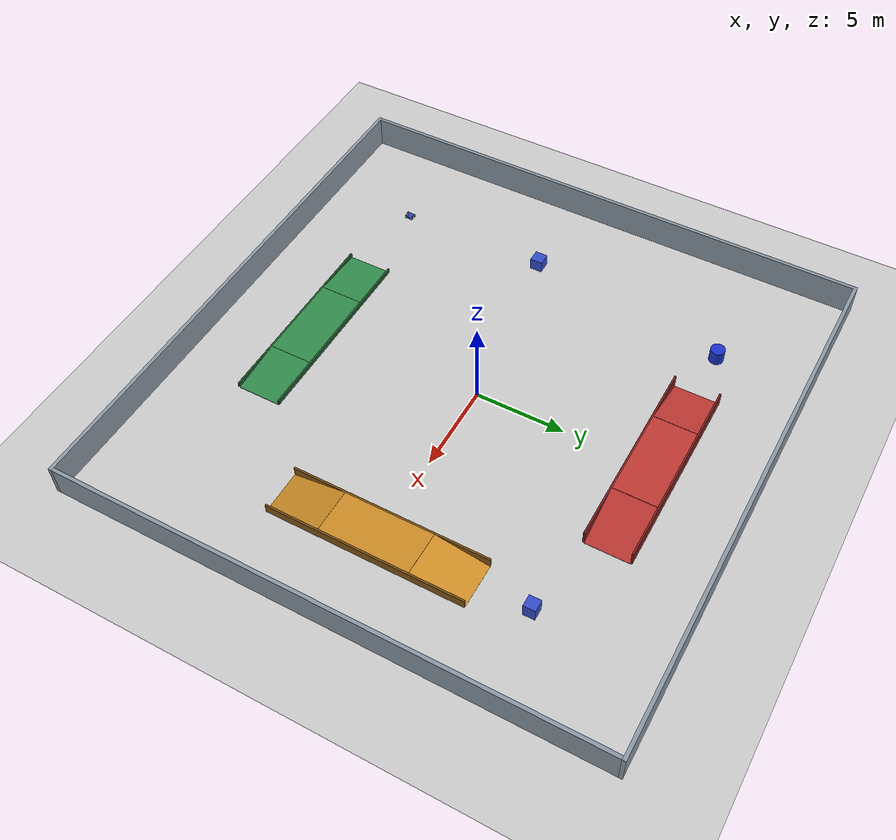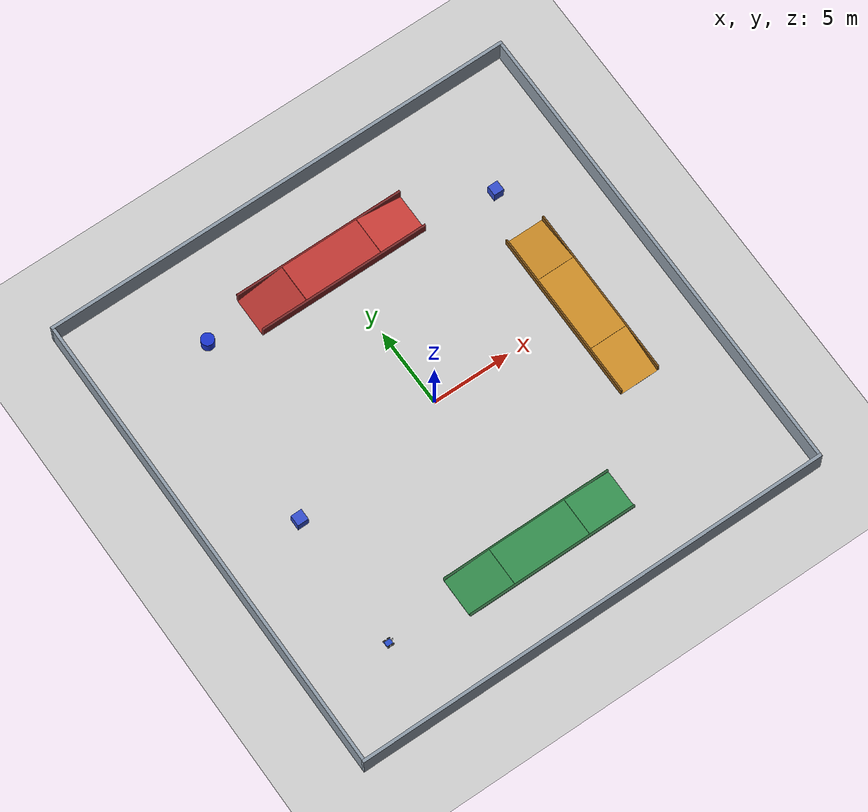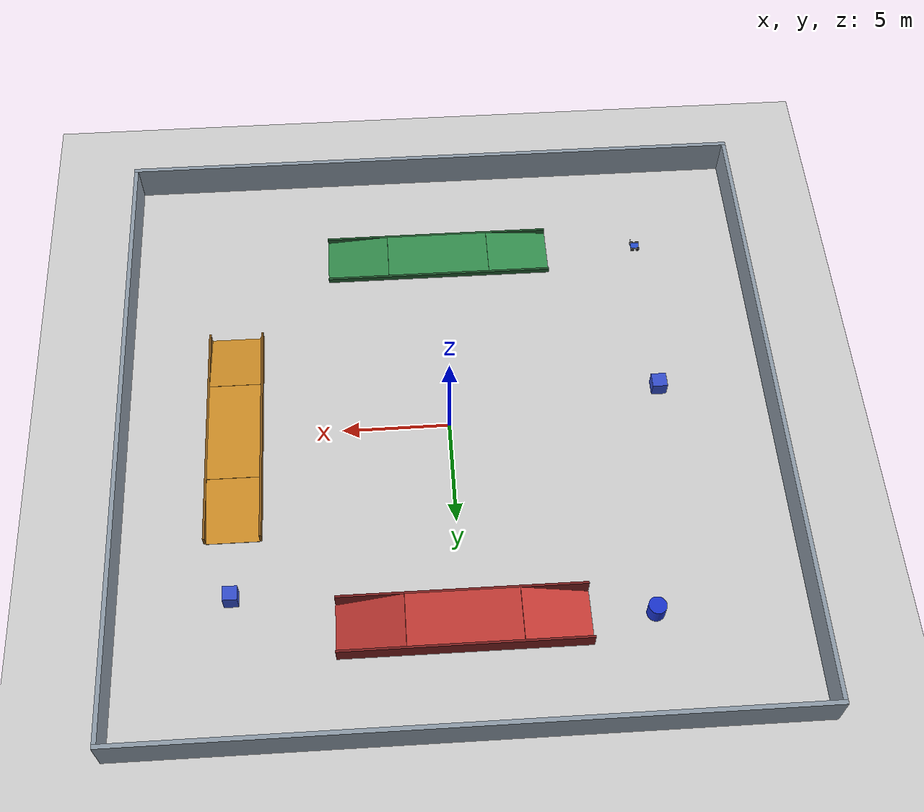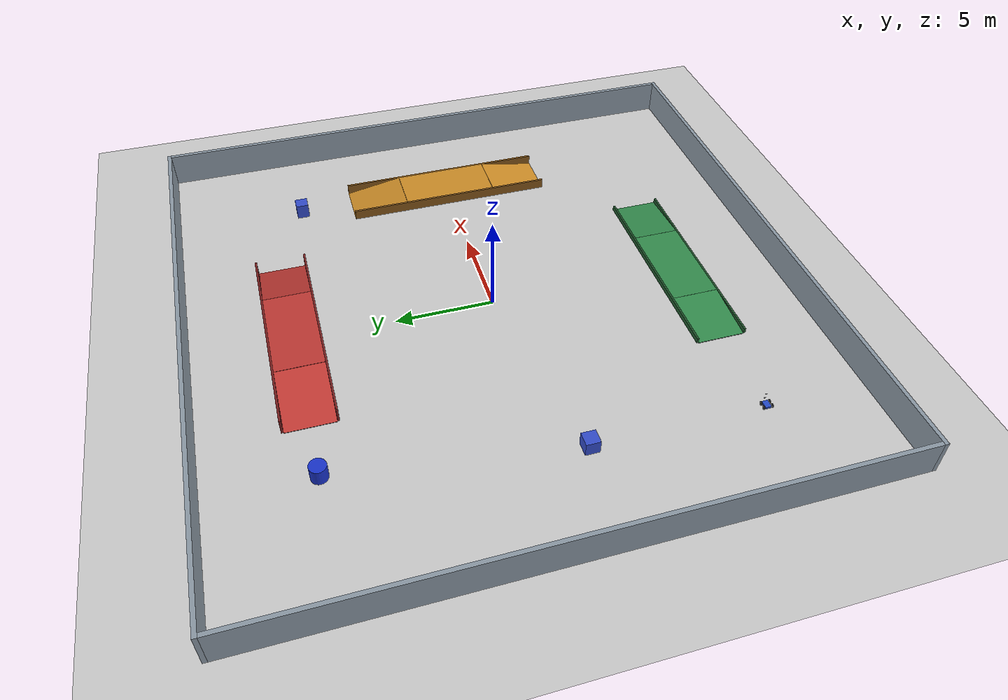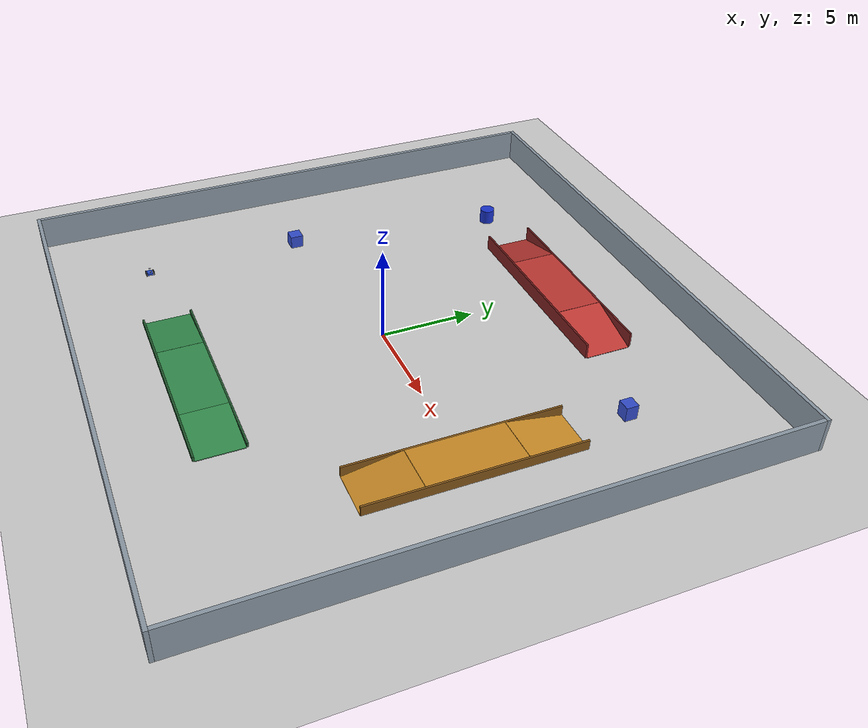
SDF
<sdf version="1.7">
 <world name="square_bridges_30m">
  <gravity>0 0 -9.8</gravity>
  <physics name="default_physics" type="ode">
   <max_step_size>0.001</max_step_size>
   <real_time_factor>1</real_time_factor>
   <real_time_update_rate>1000</real_time_update_rate>
  </physics>
  <scene><ambient>0.45 0.45 0.45 1</ambient><background>0.75 0.8 0.85 1</background><shadows>1</shadows></scene>
  <light name="sun" type="directional">
   <pose>0 0 10 0 -0 0</pose>
   <diffuse>0.8 0.8 0.8 1</diffuse>
   <specular>0.2 0.2 0.2 1</specular>
   <attenuation>
    <range>1000</range>
    <constant>0.9</constant>
    <linear>0.01</linear>
    <quadratic>0.001</quadratic>
   </attenuation>
   <direction>-0.5 0.1 -0.9</direction>
   <spot><inner_angle>0</inner_angle><outer_angle>0</outer_angle><falloff>0</falloff></spot>
  </light>
  <model name="ground_plane">
   <static>1</static>
   <link name="link">
    <collision name="collision">
     <geometry><plane><normal>0 0 1</normal><size>100 100</size></plane></geometry>
     <surface>
      <contact><collide_bitmask>65535</collide_bitmask></contact>
      <friction><ode><mu>100</mu><mu2>50</mu2></ode></friction>
     </surface>
    </collision>
    <visual name="visual">
     <cast_shadows>0</cast_shadows>
     <geometry><plane><normal>0 0 1</normal><size>100 100</size></plane></geometry>
     <material>
      <script><uri>file://media/materials/scripts/gazebo.material</uri><name>Gazebo/Grey</name></script>
     </material>
    </visual>
   </link>
  </model>
  <model name="square_perimeter">
   <static>1</static>
   <link name="south">
    <pose>0 -15.1 0.9 0 -0 0</pose>
    <collision name="collision"><geometry><box><size>30.4 0.2 1.8</size></box></geometry></collision>
    <visual name="visual">
     <geometry><box><size>30.4 0.2 1.8</size></box></geometry>
     <material><ambient>0.55 0.6 0.65 1</ambient><diffuse>0.55 0.6 0.65 1</diffuse></material>
    </visual>
   </link>
   <link name="north">
    <pose>0 15.1 0.9 0 -0 0</pose>
    <collision name="collision"><geometry><box><size>30.4 0.2 1.8</size></box></geometry></collision>
    <visual name="visual">
     <geometry><box><size>30.4 0.2 1.8</size></box></geometry>
     <material><ambient>0.55 0.6 0.65 1</ambient><diffuse>0.55 0.6 0.65 1</diffuse></material>
    </visual>
   </link>
   <link name="east">
    <pose>15.1 0 0.9 0 -0 0</pose>
    <collision name="collision"><geometry><box><size>0.2 30 1.8</size></box></geometry></collision>
    <visual name="visual">
     <geometry><box><size>0.2 30 1.8</size></box></geometry>
     <material><ambient>0.55 0.6 0.65 1</ambient><diffuse>0.55 0.6 0.65 1</diffuse></material>
    </visual>
   </link>
   <link name="west">
    <pose>-15.1 0 0.9 0 -0 0</pose>
    <collision name="collision"><geometry><box><size>0.2 30 1.8</size></box></geometry></collision>
    <visual name="visual">
     <geometry><box><size>0.2 30 1.8</size></box></geometry>
     <material><ambient>0.55 0.6 0.65 1</ambient><diffuse>0.55 0.6 0.65 1</diffuse></material>
    </visual>
   </link>
  </model>
  <model name="south_bridge_05deg">
   <pose>-0 -10 0 0 -0 0</pose>
   <static>1</static>
   <link name="ascent">
    <pose>-4 0 0.071004 0 -0.087266 0</pose>
    <collision name="collision">
     <geometry><box><size>3.01146 2.4 0.12</size></box></geometry>
     <surface><friction><ode><mu>1</mu><mu2>1</mu2></ode></friction></surface>
    </collision>
    <visual name="visual">
     <geometry><box><size>3.01146 2.4 0.12</size></box></geometry>
     <material><ambient>0.2 0.55 0.3 1</ambient><diffuse>0.2 0.55 0.3 1</diffuse></material>
    </visual>
   </link>
   <link name="flat">
    <pose>0 0 0.202466 0 -0 0</pose>
    <collision name="collision">
     <geometry><box><size>5 2.4 0.12</size></box></geometry>
     <surface><friction><ode><mu>1</mu><mu2>1</mu2></ode></friction></surface>
    </collision>
    <visual name="visual">
     <geometry><box><size>5 2.4 0.12</size></box></geometry>
     <material><ambient>0.2 0.55 0.3 1</ambient><diffuse>0.2 0.55 0.3 1</diffuse></material>
    </visual>
   </link>
   <link name="descent">
    <pose>4 0 0.071004 0 0.087266 0</pose>
    <collision name="collision">
     <geometry><box><size>3.01146 2.4 0.12</size></box></geometry>
     <surface><friction><ode><mu>1</mu><mu2>1</mu2></ode></friction></surface>
    </collision>
    <visual name="visual">
     <geometry><box><size>3.01146 2.4 0.12</size></box></geometry>
     <material><ambient>0.2 0.55 0.3 1</ambient><diffuse>0.2 0.55 0.3 1</diffuse></material>
    </visual>
   </link>
   <link name="left_support">
    <pose>0 1 0.071233 0 -0 0</pose>
    <collision name="collision"><geometry><box><size>0.3 0.25 0.142466</size></box></geometry></collision>
    <visual name="visual">
     <geometry><box><size>0.3 0.25 0.142466</size></box></geometry>
     <material><ambient>0.45 0.45 0.45 1</ambient></material>
    </visual>
   </link>
   <link name="right_support">
    <pose>0 -1 0.071233 0 -0 0</pose>
    <collision name="collision"><geometry><box><size>0.3 0.25 0.142466</size></box></geometry></collision>
    <visual name="visual">
     <geometry><box><size>0.3 0.25 0.142466</size></box></geometry>
     <material><ambient>0.45 0.45 0.45 1</ambient></material>
    </visual>
   </link>
   <link name="left_side_wall">
    <pose>0 1.25 0.131233 0 -0 0</pose>
    <collision name="collision"><geometry><box><size>11 0.1 0.262466</size></box></geometry></collision>
    <visual name="visual">
     <geometry><box><size>11 0.1 0.262466</size></box></geometry>
     <material><ambient>0.13 0.35 0.18 1</ambient><diffuse>0.13 0.35 0.18 1</diffuse></material>
    </visual>
   </link>
   <link name="right_side_wall">
    <pose>0 -1.25 0.131233 0 -0 0</pose>
    <collision name="collision"><geometry><box><size>11 0.1 0.262466</size></box></geometry></collision>
    <visual name="visual">
     <geometry><box><size>11 0.1 0.262466</size></box></geometry>
     <material><ambient>0.13 0.35 0.18 1</ambient><diffuse>0.13 0.35 0.18 1</diffuse></material>
    </visual>
   </link>
  </model>
  <model name="east_bridge_10deg">
   <pose>10 0 -0 0 -0 1.5708</pose>
   <static>1</static>
   <link name="ascent">
    <pose>-4 0 0.203565 0 -0.174533 0</pose>
    <collision name="collision">
     <geometry><box><size>3.04628 2.4 0.12</size></box></geometry>
     <surface><friction><ode><mu>1</mu><mu2>1</mu2></ode></friction></surface>
    </collision>
    <visual name="visual">
     <geometry><box><size>3.04628 2.4 0.12</size></box></geometry>
     <material><ambient>0.8 0.55 0.15 1</ambient><diffuse>0.8 0.55 0.15 1</diffuse></material>
    </visual>
   </link>
   <link name="flat">
    <pose>0 0 0.468981 0 -0 0</pose>
    <collision name="collision">
     <geometry><box><size>5 2.4 0.12</size></box></geometry>
     <surface><friction><ode><mu>1</mu><mu2>1</mu2></ode></friction></surface>
    </collision>
    <visual name="visual">
     <geometry><box><size>5 2.4 0.12</size></box></geometry>
     <material><ambient>0.8 0.55 0.15 1</ambient><diffuse>0.8 0.55 0.15 1</diffuse></material>
    </visual>
   </link>
   <link name="descent">
    <pose>4 0 0.203565 0 0.174533 0</pose>
    <collision name="collision">
     <geometry><box><size>3.04628 2.4 0.12</size></box></geometry>
     <surface><friction><ode><mu>1</mu><mu2>1</mu2></ode></friction></surface>
    </collision>
    <visual name="visual">
     <geometry><box><size>3.04628 2.4 0.12</size></box></geometry>
     <material><ambient>0.8 0.55 0.15 1</ambient><diffuse>0.8 0.55 0.15 1</diffuse></material>
    </visual>
   </link>
   <link name="left_support">
    <pose>0 1 0.20449 0 -0 0</pose>
    <collision name="collision"><geometry><box><size>0.3 0.25 0.408981</size></box></geometry></collision>
    <visual name="visual">
     <geometry><box><size>0.3 0.25 0.408981</size></box></geometry>
     <material><ambient>0.45 0.45 0.45 1</ambient></material>
    </visual>
   </link>
   <link name="right_support">
    <pose>0 -1 0.20449 0 -0 0</pose>
    <collision name="collision"><geometry><box><size>0.3 0.25 0.408981</size></box></geometry></collision>
    <visual name="visual">
     <geometry><box><size>0.3 0.25 0.408981</size></box></geometry>
     <material><ambient>0.45 0.45 0.45 1</ambient></material>
    </visual>
   </link>
   <link name="left_side_wall">
    <pose>0 1.25 0.26449 0 -0 0</pose>
    <collision name="collision"><geometry><box><size>11 0.1 0.528981</size></box></geometry></collision>
    <visual name="visual">
     <geometry><box><size>11 0.1 0.528981</size></box></geometry>
     <material><ambient>0.52 0.34 0.1 1</ambient><diffuse>0.52 0.34 0.1 1</diffuse></material>
    </visual>
   </link>
   <link name="right_side_wall">
    <pose>0 -1.25 0.26449 0 -0 0</pose>
    <collision name="collision"><geometry><box><size>11 0.1 0.528981</size></box></geometry></collision>
    <visual name="visual">
     <geometry><box><size>11 0.1 0.528981</size></box></geometry>
     <material><ambient>0.52 0.34 0.1 1</ambient><diffuse>0.52 0.34 0.1 1</diffuse></material>
    </visual>
   </link>
  </model>
  <model name="north_bridge_15deg">
   <pose>-0 10 -0 0 -0 -3.14159</pose>
   <static>1</static>
   <link name="ascent">
    <pose>-4 0 0.339807 0 -0.261799 0</pose>
    <collision name="collision">
     <geometry><box><size>3.10583 2.4 0.12</size></box></geometry>
     <surface><friction><ode><mu>1</mu><mu2>1</mu2></ode></friction></surface>
    </collision>
    <visual name="visual">
     <geometry><box><size>3.10583 2.4 0.12</size></box></geometry>
     <material><ambient>0.75 0.22 0.2 1</ambient><diffuse>0.75 0.22 0.2 1</diffuse></material>
    </visual>
   </link>
   <link name="flat">
    <pose>0 0 0.743848 0 -0 0</pose>
    <collision name="collision">
     <geometry><box><size>5 2.4 0.12</size></box></geometry>
     <surface><friction><ode><mu>1</mu><mu2>1</mu2></ode></friction></surface>
    </collision>
    <visual name="visual">
     <geometry><box><size>5 2.4 0.12</size></box></geometry>
     <material><ambient>0.75 0.22 0.2 1</ambient><diffuse>0.75 0.22 0.2 1</diffuse></material>
    </visual>
   </link>
   <link name="descent">
    <pose>4 0 0.339807 0 0.261799 0</pose>
    <collision name="collision">
     <geometry><box><size>3.10583 2.4 0.12</size></box></geometry>
     <surface><friction><ode><mu>1</mu><mu2>1</mu2></ode></friction></surface>
    </collision>
    <visual name="visual">
     <geometry><box><size>3.10583 2.4 0.12</size></box></geometry>
     <material><ambient>0.75 0.22 0.2 1</ambient><diffuse>0.75 0.22 0.2 1</diffuse></material>
    </visual>
   </link>
   <link name="left_support">
    <pose>0 1 0.341924 0 -0 0</pose>
    <collision name="collision"><geometry><box><size>0.3 0.25 0.683848</size></box></geometry></collision>
    <visual name="visual">
     <geometry><box><size>0.3 0.25 0.683848</size></box></geometry>
     <material><ambient>0.45 0.45 0.45 1</ambient></material>
    </visual>
   </link>
   <link name="right_support">
    <pose>0 -1 0.341924 0 -0 0</pose>
    <collision name="collision"><geometry><box><size>0.3 0.25 0.683848</size></box></geometry></collision>
    <visual name="visual">
     <geometry><box><size>0.3 0.25 0.683848</size></box></geometry>
     <material><ambient>0.45 0.45 0.45 1</ambient></material>
    </visual>
   </link>
   <link name="left_side_wall">
    <pose>0 1.25 0.401924 0 -0 0</pose>
    <collision name="collision"><geometry><box><size>11 0.1 0.803848</size></box></geometry></collision>
    <visual name="visual">
     <geometry><box><size>11 0.1 0.803848</size></box></geometry>
     <material><ambient>0.48 0.12 0.12 1</ambient><diffuse>0.48 0.12 0.12 1</diffuse></material>
    </visual>
   </link>
   <link name="right_side_wall">
    <pose>0 -1.25 0.401924 0 -0 0</pose>
    <collision name="collision"><geometry><box><size>11 0.1 0.803848</size></box></geometry></collision>
    <visual name="visual">
     <geometry><box><size>11 0.1 0.803848</size></box></geometry>
     <material><ambient>0.48 0.12 0.12 1</ambient><diffuse>0.48 0.12 0.12 1</diffuse></material>
    </visual>
   </link>
  </model>
  <model name="east_box">
   <pose>10 8.3 0 0 -0 0</pose>
   <static>1</static>
   <link name="body">
    <pose>0 0 0.4 0 -0 0</pose>
    <collision name="collision"><geometry><box><size>0.65 0.65 0.8</size></box></geometry></collision>
    <visual name="visual">
     <geometry><box><size>0.65 0.65 0.8</size></box></geometry>
     <material><ambient>0.2 0.3 0.8 1</ambient><diffuse>0.2 0.3 0.8 1</diffuse></material>
    </visual>
   </link>
  </model>
  <model name="north_cylinder">
   <pose>-8.3 10 0 0 -0 0</pose>
   <static>1</static>
   <link name="body">
    <pose>0 0 0.4 0 -0 0</pose>
    <collision name="collision">
     <geometry><cylinder><radius>0.4</radius><length>0.8</length></cylinder></geometry>
    </collision>
    <visual name="visual">
     <geometry><cylinder><radius>0.4</radius><length>0.8</length></cylinder></geometry>
     <material><ambient>0.1 0.2 0.8 1</ambient><diffuse>0.1 0.2 0.8 1</diffuse></material>
    </visual>
   </link>
  </model>
  <model name="west_box">
   <pose>-10 -1.5 0 0 -0 0</pose>
   <static>1</static>
   <link name="body">
    <pose>0 0 0.35 0 -0 0</pose>
    <collision name="collision"><geometry><box><size>0.7 0.7 0.7</size></box></geometry></collision>
    <visual name="visual">
     <geometry><box><size>0.7 0.7 0.7</size></box></geometry>
     <material><ambient>0.2 0.3 0.8 1</ambient><diffuse>0.2 0.3 0.8 1</diffuse></material>
    </visual>
   </link>
  </model>
  <magnetic_field>6e-06 2.3e-05 -4.2e-05</magnetic_field>
  <atmosphere type="adiabatic"/>
  <audio><device>default</device></audio>
  <spherical_coordinates>
   <surface_model>EARTH_WGS84</surface_model>
   <latitude_deg>0</latitude_deg>
   <longitude_deg>0</longitude_deg>
   <elevation>0</elevation>
   <heading_deg>0</heading_deg>
  </spherical_coordinates>
  <model name="simple_car">
   <link name="base_footprint">
    <inertial>
     <pose>0.029049 0 0.131866 0 -0 0</pose>
     <mass>2.272</mass>
     <inertia>
      <ixx>0.0364229</ixx>
      <ixy>0</ixy>
      <ixz>-0.0155968</ixz>
      <iyy>0.0624836</iyy>
      <iyz>0</iyz>
      <izz>0.0552527</izz>
     </inertia>
    </inertial>
    <collision name="base_footprint_fixed_joint_lump__chassis_collision">
     <pose>0 0 0.1 0 -0 0</pose>
     <geometry><box><size>0.4 0.3 0.1</size></box></geometry>
    </collision>
    <collision name="base_footprint_fixed_joint_lump__camera_link_collision_1">
     <pose>0.25 -0.0175 0.55 0 0.436332 0</pose>
     <geometry><box><size>0.02505 0.09 0.025</size></box></geometry>
    </collision>
    <collision name="base_footprint_fixed_joint_lump__livox_frame_collision_2">
     <pose>0.24 0 0.3 0 -0 0</pose>
     <geometry><cylinder><length>0.04</length><radius>0.035</radius></cylinder></geometry>
    </collision>
    <visual name="base_footprint_fixed_joint_lump__chassis_visual">
     <pose>0 0 0.1 0 -0 0</pose>
     <geometry><box><size>0.4 0.3 0.1</size></box></geometry>
     <material>
      <script><name>Gazebo/Blue</name><uri>file://media/materials/scripts/gazebo.material</uri></script>
     </material>
    </visual>
    <visual name="base_footprint_fixed_joint_lump__camera_link_visual_1">
     <pose>0.25 -0.0175 0.55 0 0.436332 0</pose>
     <geometry><box><size>0.02505 0.09 0.025</size></box></geometry>
     <material>
      <script><name>Gazebo/Grey</name><uri>file://media/materials/scripts/gazebo.material</uri></script>
     </material>
    </visual>
    <visual name="base_footprint_fixed_joint_lump__livox_frame_visual_2">
     <pose>0.24 0 0.3 0 -0 0</pose>
     <geometry><cylinder><length>0.04</length><radius>0.035</radius></cylinder></geometry>
    </visual>
    <sensor name="cameracolor" type="camera">
     <always_on>1</always_on>
     <update_rate>30</update_rate>
     <visualize>0</visualize>
     <camera name="camera">
      <horizontal_fov>1.21126</horizontal_fov>
      <image><width>1280</width><height>720</height><format>RGB_INT8</format></image>
      <clip><near>0.1</near><far>10</far></clip>
      <noise><type>gaussian</type><mean>0</mean><stddev>0.007</stddev></noise>
     </camera>
     <pose>0.25 0 0.55 0 0.436332 0</pose>
    </sensor>
    <sensor name="cameraired1" type="camera">
     <always_on>1</always_on>
     <update_rate>30</update_rate>
     <visualize>0</visualize>
     <camera name="camera">
      <horizontal_fov>1.48702</horizontal_fov>
      <image><width>424</width><height>240</height><format>L_INT8</format></image>
      <clip><near>0.1</near><far>10</far></clip>
      <noise><type>gaussian</type><mean>0</mean><stddev>0.05</stddev></noise>
     </camera>
     <pose>0.25 0 0.55 0 0.436332 0</pose>
    </sensor>
    <sensor name="cameraired2" type="camera">
     <always_on>1</always_on>
     <update_rate>30</update_rate>
     <visualize>0</visualize>
     <camera name="camera">
      <horizontal_fov>1.48702</horizontal_fov>
      <image><width>424</width><height>240</height><format>L_INT8</format></image>
      <clip><near>0.1</near><far>10</far></clip>
      <noise><type>gaussian</type><mean>0</mean><stddev>0.05</stddev></noise>
     </camera>
     <pose>0.25 0 0.55 0 0.436332 0</pose>
    </sensor>
    <sensor name="cameradepth" type="depth">
     <always_on>1</always_on>
     <update_rate>30</update_rate>
     <visualize>0</visualize>
     <camera name="camera">
      <horizontal_fov>1.21126</horizontal_fov>
      <image><width>1280</width><height>720</height></image>
      <clip><near>0.1</near><far>10</far></clip>
      <noise><type>gaussian</type><mean>0</mean><stddev>0.002</stddev></noise>
     </camera>
     <pose>0.25 0 0.55 0 0.436332 0</pose>
    </sensor>
    <sensor name="camera_imu_sensor" type="imu">
     <always_on>1</always_on>
     <update_rate>200</update_rate>
     <visualize>0</visualize>
     <plugin name="camera_imu_plugin" filename="libgazebo_ros_imu_sensor.so">
      <ros><namespace>/camera</namespace><remapping>~/out:=imu</remapping></ros>
      <frame_name>camera_imu_optical_frame</frame_name>
      <initial_orientation_as_reference>0</initial_orientation_as_reference>
     </plugin>
     <imu>
      <angular_velocity>
       <x><noise type="gaussian"><mean>0</mean><stddev>0.0002</stddev></noise></x>
       <y><noise type="gaussian"><mean>0</mean><stddev>0.0002</stddev></noise></y>
       <z><noise type="gaussian"><mean>0</mean><stddev>0.0002</stddev></noise></z>
      </angular_velocity>
      <linear_acceleration>
       <x><noise type="gaussian"><mean>0</mean><stddev>0.017</stddev></noise></x>
       <y><noise type="gaussian"><mean>0</mean><stddev>0.017</stddev></noise></y>
       <z><noise type="gaussian"><mean>0</mean><stddev>0.017</stddev></noise></z>
      </linear_acceleration>
     </imu>
     <pose>0.25 -0.0175 0.55 -2.00713 0 -1.5708</pose>
    </sensor>
    <sensor name="livox_frame" type="ray">
     <always_on>1</always_on>
     <visualize>0</visualize>
     <update_rate>10</update_rate>
     <plugin name="livox_mid360_plugin" filename="libros2_livox.so">
      <ray>
       <scan>
        <horizontal>
         <samples>100</samples>
         <resolution>1</resolution>
         <min_angle>0</min_angle>
         <max_angle>6.2831852</max_angle>
        </horizontal>
        <vertical>
         <samples>360</samples>
         <resolution>1</resolution>
         <min_angle>-0.126012</min_angle>
         <max_angle>0.963247</max_angle>
        </vertical>
       </scan>
       <range><min>0.1</min><max>200.0</max><resolution>0.002</resolution></range>
       <noise><type>gaussian</type><mean>0.0</mean><stddev>0.002</stddev></noise>
      </ray>
      <samples>30000</samples>
      <downsample>20</downsample>
      <front_half_only>1</front_half_only>
      <csv_file_name>/home/lxh/nanhu-research-navigation/src/gazebo_sim/install/ros2_livox_simulation/share/ros2_livox_simulation/scan_mode/mid360.csv</csv_file_name>
      <topic>/livox/lidar</topic>
     </plugin>
     <pose>0.24 0 0.3 0 -0 0</pose>
     <ray>
      <scan>
       <horizontal>
        <samples>640</samples>
        <resolution>1</resolution>
        <min_angle>0</min_angle>
        <max_angle>0</max_angle>
       </horizontal>
       <vertical><samples>1</samples><min_angle>0</min_angle><max_angle>0</max_angle></vertical>
      </scan>
      <range><min>0</min><max>0</max></range>
     </ray>
    </sensor>
    <sensor name="lidar_imu" type="imu">
     <always_on>1</always_on>
     <update_rate>200</update_rate>
     <visualize>0</visualize>
     <plugin name="lidar_imu_plugin" filename="libgazebo_ros_imu_sensor.so">
      <ros><namespace>/</namespace><remapping>~/out:=/livox/imu</remapping></ros>
      <frame_name>livox_frame</frame_name>
      <initial_orientation_as_reference>0</initial_orientation_as_reference>
     </plugin>
     <imu>
      <angular_velocity>
       <x><noise type="gaussian"><mean>0</mean><stddev>0.0002</stddev></noise></x>
       <y><noise type="gaussian"><mean>0</mean><stddev>0.0002</stddev></noise></y>
       <z><noise type="gaussian"><mean>0</mean><stddev>0.0002</stddev></noise></z>
      </angular_velocity>
      <linear_acceleration>
       <x><noise type="gaussian"><mean>0</mean><stddev>0.017</stddev></noise></x>
       <y><noise type="gaussian"><mean>0</mean><stddev>0.017</stddev></noise></y>
       <z><noise type="gaussian"><mean>0</mean><stddev>0.017</stddev></noise></z>
      </linear_acceleration>
     </imu>
     <pose>0.24 0 0.3 0 -0 0</pose>
    </sensor>
   </link>
   <joint name="left_back_wheel_joint" type="revolute">
    <pose relative_to="base_footprint">-0.13 0.205 0.1 -1.5708 0 0</pose>
    <parent>base_footprint</parent>
    <child>left_back_wheel</child>
    <axis>
     <xyz>0 0 1</xyz>
     <limit><lower>-1e+16</lower><upper>1e+16</upper></limit>
     <dynamics><spring_reference>0</spring_reference><spring_stiffness>0</spring_stiffness></dynamics>
    </axis>
   </joint>
   <link name="left_back_wheel">
    <pose relative_to="left_back_wheel_joint">0 0 0 0 -0 0</pose>
    <inertial>
     <mass>0.5</mass>
     <inertia><ixx>0.002</ixx><ixy>0</ixy><ixz>0</ixz><iyy>0.002</iyy><iyz>0</iyz><izz>0.001</izz></inertia>
    </inertial>
    <collision name="left_back_wheel_collision">
     <geometry><cylinder><length>0.05</length><radius>0.1</radius></cylinder></geometry>
     <surface><friction><ode><mu>1</mu><mu2>1</mu2><fdir1>0 0 1</fdir1></ode></friction></surface>
    </collision>
    <visual name="left_back_wheel_visual">
     <geometry><cylinder><length>0.05</length><radius>0.1</radius></cylinder></geometry>
     <material>
      <script><name>Gazebo/Black</name><uri>file://media/materials/scripts/gazebo.material</uri></script>
     </material>
    </visual>
   </link>
   <joint name="left_top_wheel_joint" type="revolute">
    <pose relative_to="base_footprint">0.13 0.205 0.1 -1.5708 0 0</pose>
    <parent>base_footprint</parent>
    <child>left_top_wheel</child>
    <axis>
     <xyz>0 0 1</xyz>
     <limit><lower>-1e+16</lower><upper>1e+16</upper></limit>
     <dynamics><spring_reference>0</spring_reference><spring_stiffness>0</spring_stiffness></dynamics>
    </axis>
   </joint>
   <link name="left_top_wheel">
    <pose relative_to="left_top_wheel_joint">0 0 0 0 -0 0</pose>
    <inertial>
     <mass>0.5</mass>
     <inertia><ixx>0.002</ixx><ixy>0</ixy><ixz>0</ixz><iyy>0.002</iyy><iyz>0</iyz><izz>0.001</izz></inertia>
    </inertial>
    <collision name="left_top_wheel_collision">
     <geometry><cylinder><length>0.05</length><radius>0.1</radius></cylinder></geometry>
     <surface><friction><ode><mu>1</mu><mu2>1</mu2><fdir1>0 0 1</fdir1></ode></friction></surface>
    </collision>
    <visual name="left_top_wheel_visual">
     <geometry><cylinder><length>0.05</length><radius>0.1</radius></cylinder></geometry>
     <material>
      <script><name>Gazebo/Black</name><uri>file://media/materials/scripts/gazebo.material</uri></script>
     </material>
    </visual>
   </link>
   <joint name="right_back_wheel_joint" type="revolute">
    <pose relative_to="base_footprint">-0.13 -0.205 0.1 -1.5708 0 0</pose>
    <parent>base_footprint</parent>
    <child>right_back_wheel</child>
    <axis>
     <xyz>0 0 1</xyz>
     <limit><lower>-1e+16</lower><upper>1e+16</upper></limit>
     <dynamics><spring_reference>0</spring_reference><spring_stiffness>0</spring_stiffness></dynamics>
    </axis>
   </joint>
   <link name="right_back_wheel">
    <pose relative_to="right_back_wheel_joint">0 0 0 0 -0 0</pose>
    <inertial>
     <mass>0.5</mass>
     <inertia><ixx>0.002</ixx><ixy>0</ixy><ixz>0</ixz><iyy>0.002</iyy><iyz>0</iyz><izz>0.001</izz></inertia>
    </inertial>
    <collision name="right_back_wheel_collision">
     <geometry><cylinder><length>0.05</length><radius>0.1</radius></cylinder></geometry>
     <surface><friction><ode><mu>1</mu><mu2>1</mu2><fdir1>0 0 1</fdir1></ode></friction></surface>
    </collision>
    <visual name="right_back_wheel_visual">
     <geometry><cylinder><length>0.05</length><radius>0.1</radius></cylinder></geometry>
     <material>
      <script><name>Gazebo/Black</name><uri>file://media/materials/scripts/gazebo.material</uri></script>
     </material>
    </visual>
   </link>
   <joint name="right_top_wheel_joint" type="revolute">
    <pose relative_to="base_footprint">0.13 -0.205 0.1 -1.5708 0 0</pose>
    <parent>base_footprint</parent>
    <child>right_top_wheel</child>
    <axis>
     <xyz>0 0 1</xyz>
     <limit><lower>-1e+16</lower><upper>1e+16</upper></limit>
     <dynamics><spring_reference>0</spring_reference><spring_stiffness>0</spring_stiffness></dynamics>
    </axis>
   </joint>
   <link name="right_top_wheel">
    <pose relative_to="right_top_wheel_joint">0 0 0 0 -0 0</pose>
    <inertial>
     <mass>0.5</mass>
     <inertia><ixx>0.002</ixx><ixy>0</ixy><ixz>0</ixz><iyy>0.002</iyy><iyz>0</iyz><izz>0.001</izz></inertia>
    </inertial>
    <collision name="right_top_wheel_collision">
     <geometry><cylinder><length>0.05</length><radius>0.1</radius></cylinder></geometry>
     <surface><friction><ode><mu>1</mu><mu2>1</mu2><fdir1>0 0 1</fdir1></ode></friction></surface>
    </collision>
    <visual name="right_top_wheel_visual">
     <geometry><cylinder><length>0.05</length><radius>0.1</radius></cylinder></geometry>
     <material>
      <script><name>Gazebo/Black</name><uri>file://media/materials/scripts/gazebo.material</uri></script>
     </material>
    </visual>
   </link>
   <plugin name="gazebo_ros_skid_steer_drive" filename="libgazebo_ros_diff_drive.so">
    <ros><namespace>/</namespace><remapping>cmd_vel:=cmd_vel</remapping><remapping>odom:=odom</remapping></ros>
    <num_wheel_pairs>2</num_wheel_pairs>
    <left_joint>left_top_wheel_joint</left_joint>
    <right_joint>right_top_wheel_joint</right_joint>
    <left_joint>left_back_wheel_joint</left_joint>
    <right_joint>right_back_wheel_joint</right_joint>
    <wheel_separation>0.45</wheel_separation>
    <wheel_separation>0.45</wheel_separation>
    <wheel_diameter>0.20</wheel_diameter>
    <wheel_diameter>0.20</wheel_diameter>
    <max_wheel_torque>20</max_wheel_torque>
    <max_wheel_acceleration>1.0</max_wheel_acceleration>
    <publish_odom>1</publish_odom>
    <publish_odom_tf>0</publish_odom_tf>
    <publish_wheel_tf>0</publish_wheel_tf>
    <odometry_frame>odom</odometry_frame>
    <robot_base_frame>base_footprint</robot_base_frame>
   </plugin>
   <plugin name="gazebo_ros_wheel_slip" filename="libgazebo_ros_wheel_slip.so">
    <wheel link_name="right_back_wheel">
     <slip_compliance_lateral>0.10</slip_compliance_lateral>
     <slip_compliance_longitudinal>0.0</slip_compliance_longitudinal>
     <wheel_normal_force>10.5</wheel_normal_force>
    </wheel>
    <wheel link_name="left_back_wheel">
     <slip_compliance_lateral>0.10</slip_compliance_lateral>
     <slip_compliance_longitudinal>0.0</slip_compliance_longitudinal>
     <wheel_normal_force>10.5</wheel_normal_force>
    </wheel>
    <wheel link_name="right_top_wheel">
     <slip_compliance_lateral>0.10</slip_compliance_lateral>
     <slip_compliance_longitudinal>0.0</slip_compliance_longitudinal>
     <wheel_normal_force>10.5</wheel_normal_force>
    </wheel>
    <wheel link_name="left_top_wheel">
     <slip_compliance_lateral>0.10</slip_compliance_lateral>
     <slip_compliance_longitudinal>0.0</slip_compliance_longitudinal>
     <wheel_normal_force>10.5</wheel_normal_force>
    </wheel>
   </plugin>
   <static>0</static>
   <plugin name="camera" filename="librealsense_gazebo_plugin.so">
    <prefix>camera</prefix>
    <depthUpdateRate>30.0</depthUpdateRate>
    <colorUpdateRate>30.0</colorUpdateRate>
    <infraredUpdateRate>30.0</infraredUpdateRate>
    <depthTopicName>depth/image_raw</depthTopicName>
    <depthCameraInfoTopicName>depth/camera_info</depthCameraInfoTopicName>
    <colorTopicName>color/image_raw</colorTopicName>
    <colorCameraInfoTopicName>color/camera_info</colorCameraInfoTopicName>
    <infrared1TopicName>infra1/image_rect_raw</infrared1TopicName>
    <infrared1CameraInfoTopicName>infra1/camera_info</infrared1CameraInfoTopicName>
    <infrared2TopicName>infra2/image_rect_raw</infrared2TopicName>
    <infrared2CameraInfoTopicName>infra2/camera_info</infrared2CameraInfoTopicName>
    <colorOpticalframeName>camera_color_optical_frame</colorOpticalframeName>
    <depthOpticalframeName>camera_color_optical_frame</depthOpticalframeName>
    <infrared1OpticalframeName>camera_left_ir_optical_frame</infrared1OpticalframeName>
    <infrared2OpticalframeName>camera_right_ir_optical_frame</infrared2OpticalframeName>
    <rangeMinDepth>0.1</rangeMinDepth>
    <rangeMaxDepth>10.0</rangeMaxDepth>
    <pointCloud>1</pointCloud>
    <pointCloudTopicName>depth/color/points</pointCloudTopicName>
    <pointCloudCutoff>0.1</pointCloudCutoff>
    <pointCloudCutoffMax>10.0</pointCloudCutoffMax>
   </plugin>
   <pose>-10.0022 -10.0038 0 0 -0 0.001883</pose>
  </model>
 </world>
</sdf>
